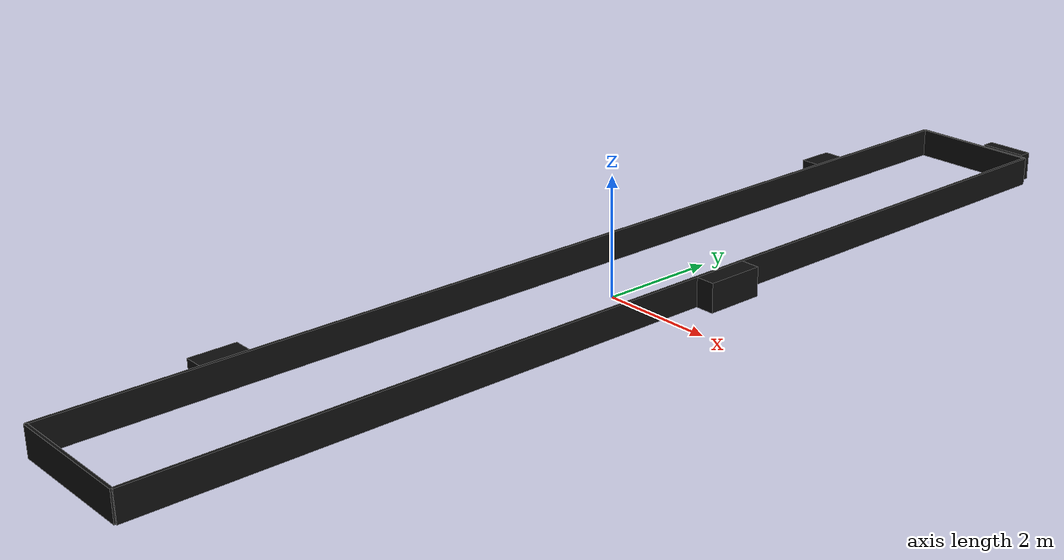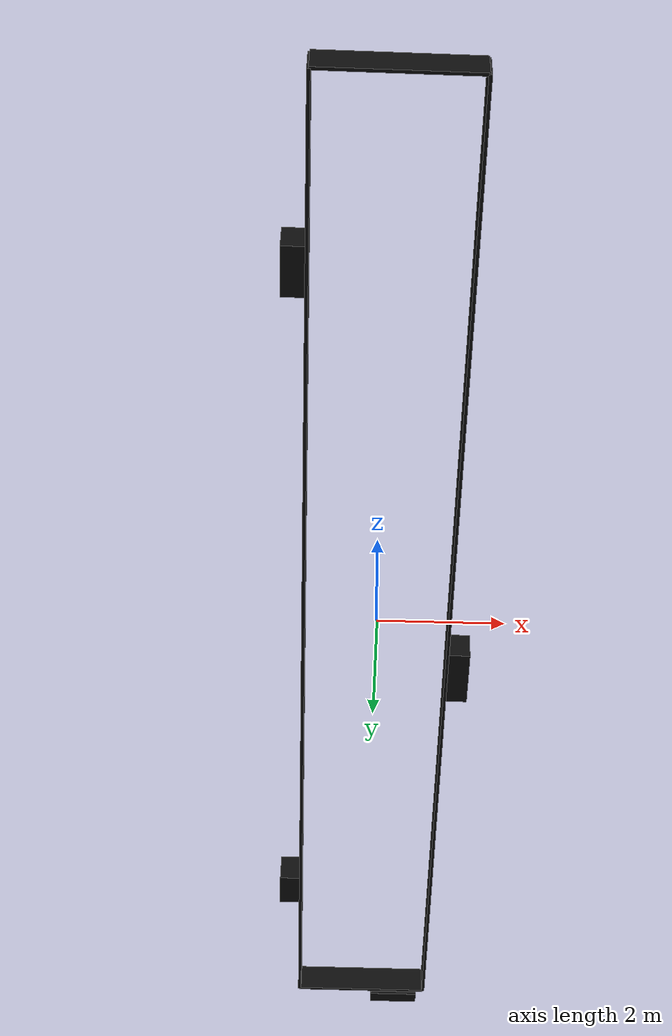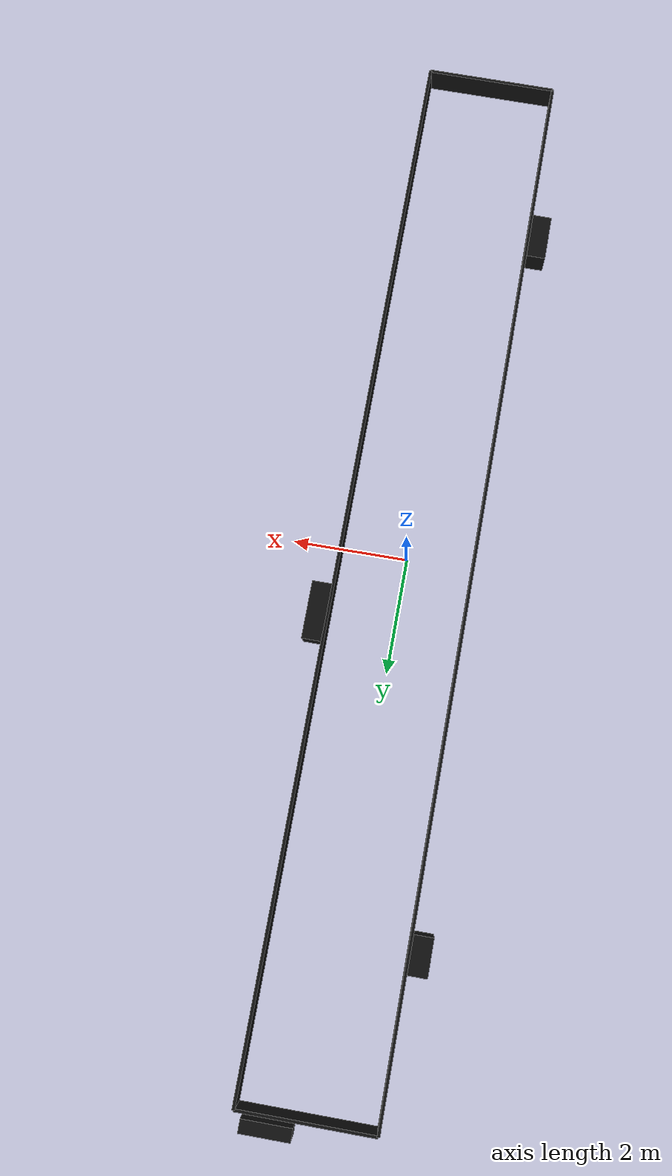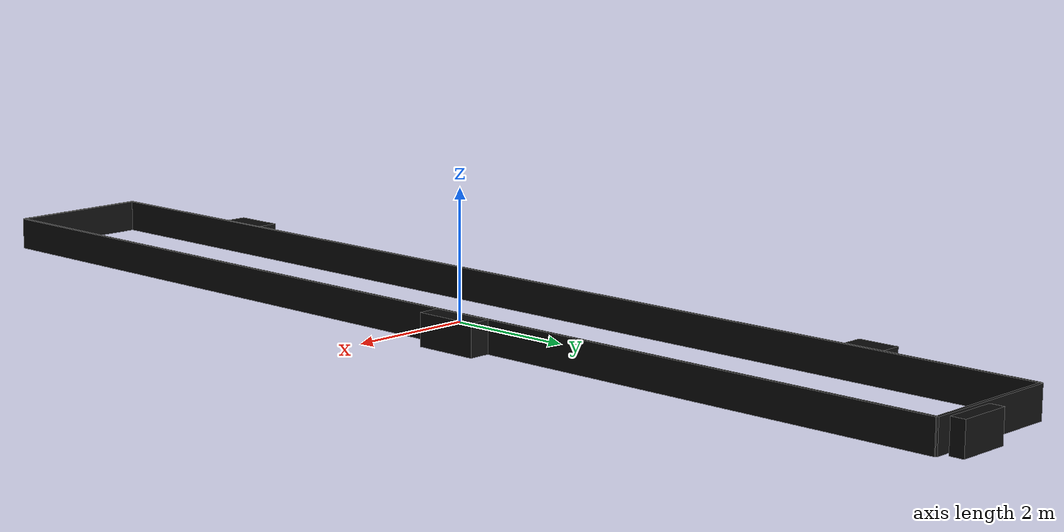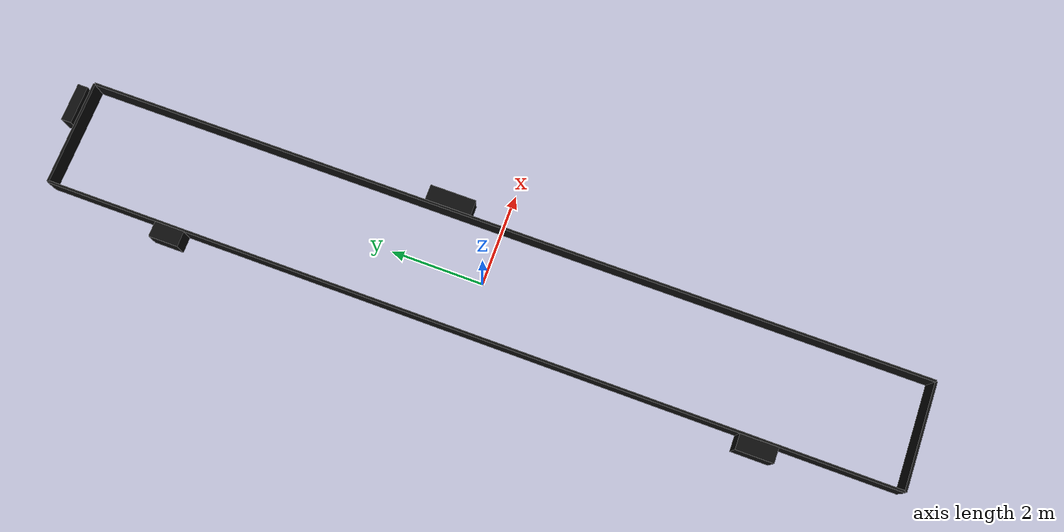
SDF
<?xml version="1.0"?>
<sdf version="1.6">
  <model name="warehouse_lidar_blocker_long">
    <static>true</static>
    <link name="link">
      <!-- Use shelf-outline rails plus a few exterior signatures so long racks
           stop looking like featureless bars, without placing fake obstacles
           out in the open floor. -->
      <collision name="x_min_lidar_rail_collision">
        <pose>-1.15 0 0.25 0 0 0</pose>
        <geometry>
          <box>
            <size>0.05 18.30 0.50</size>
          </box>
        </geometry>
      </collision>
      <collision name="x_max_lidar_rail_collision">
        <pose>1.15 0 0.25 0 0 0</pose>
        <geometry>
          <box>
            <size>0.05 18.30 0.50</size>
          </box>
        </geometry>
      </collision>
      <collision name="y_min_lidar_rail_collision">
        <pose>0 -9.15 0.25 0 0 0</pose>
        <geometry>
          <box>
            <size>2.30 0.05 0.50</size>
          </box>
        </geometry>
      </collision>
      <collision name="y_max_lidar_rail_collision">
        <pose>0 9.15 0.25 0 0 0</pose>
        <geometry>
          <box>
            <size>2.30 0.05 0.50</size>
          </box>
        </geometry>
      </collision>
      <collision name="west_marker_low_collision">
        <pose>-1.34 -6.20 0.25 0 0 0</pose>
        <geometry>
          <box>
            <size>0.34 0.80 0.50</size>
          </box>
        </geometry>
      </collision>
      <collision name="east_marker_mid_collision">
        <pose>1.34 1.20 0.25 0 0 0</pose>
        <geometry>
          <box>
            <size>0.34 1.00 0.50</size>
          </box>
        </geometry>
      </collision>
      <collision name="west_marker_high_collision">
        <pose>-1.34 6.40 0.25 0 0 0</pose>
        <geometry>
          <box>
            <size>0.34 0.64 0.50</size>
          </box>
        </geometry>
      </collision>
      <collision name="north_marker_collision">
        <pose>0.60 9.36 0.25 0 0 0</pose>
        <geometry>
          <box>
            <size>0.84 0.22 0.50</size>
          </box>
        </geometry>
      </collision>
      <visual name="x_min_lidar_rail">
        <pose>-1.15 0 0.25 0 0 0</pose>
        <cast_shadows>false</cast_shadows>
        <geometry>
          <box>
            <size>0.05 18.30 0.50</size>
          </box>
        </geometry>
        <material>
          <ambient>0.03 0.03 0.03 1</ambient>
          <diffuse>0.05 0.05 0.05 1</diffuse>
        </material>
      </visual>
      <visual name="x_max_lidar_rail">
        <pose>1.15 0 0.25 0 0 0</pose>
        <cast_shadows>false</cast_shadows>
        <geometry>
          <box>
            <size>0.05 18.30 0.50</size>
          </box>
        </geometry>
        <material>
          <ambient>0.03 0.03 0.03 1</ambient>
          <diffuse>0.05 0.05 0.05 1</diffuse>
        </material>
      </visual>
      <visual name="y_min_lidar_rail">
        <pose>0 -9.15 0.25 0 0 0</pose>
        <cast_shadows>false</cast_shadows>
        <geometry>
          <box>
            <size>2.30 0.05 0.50</size>
          </box>
        </geometry>
        <material>
          <ambient>0.03 0.03 0.03 1</ambient>
          <diffuse>0.05 0.05 0.05 1</diffuse>
        </material>
      </visual>
      <visual name="y_max_lidar_rail">
        <pose>0 9.15 0.25 0 0 0</pose>
        <cast_shadows>false</cast_shadows>
        <geometry>
          <box>
            <size>2.30 0.05 0.50</size>
          </box>
        </geometry>
        <material>
          <ambient>0.03 0.03 0.03 1</ambient>
          <diffuse>0.05 0.05 0.05 1</diffuse>
        </material>
      </visual>
      <visual name="west_marker_low">
        <pose>-1.34 -6.20 0.25 0 0 0</pose>
        <cast_shadows>false</cast_shadows>
        <geometry>
          <box>
            <size>0.34 0.80 0.50</size>
          </box>
        </geometry>
        <material>
          <ambient>0.03 0.03 0.03 1</ambient>
          <diffuse>0.05 0.05 0.05 1</diffuse>
        </material>
      </visual>
      <visual name="east_marker_mid">
        <pose>1.34 1.20 0.25 0 0 0</pose>
        <cast_shadows>false</cast_shadows>
        <geometry>
          <box>
            <size>0.34 1.00 0.50</size>
          </box>
        </geometry>
        <material>
          <ambient>0.03 0.03 0.03 1</ambient>
          <diffuse>0.05 0.05 0.05 1</diffuse>
        </material>
      </visual>
      <visual name="west_marker_high">
        <pose>-1.34 6.40 0.25 0 0 0</pose>
        <cast_shadows>false</cast_shadows>
        <geometry>
          <box>
            <size>0.34 0.64 0.50</size>
          </box>
        </geometry>
        <material>
          <ambient>0.03 0.03 0.03 1</ambient>
          <diffuse>0.05 0.05 0.05 1</diffuse>
        </material>
      </visual>
      <visual name="north_marker">
        <pose>0.60 9.36 0.25 0 0 0</pose>
        <cast_shadows>false</cast_shadows>
        <geometry>
          <box>
            <size>0.84 0.22 0.50</size>
          </box>
        </geometry>
        <material>
          <ambient>0.03 0.03 0.03 1</ambient>
          <diffuse>0.05 0.05 0.05 1</diffuse>
        </material>
      </visual>
    </link>
  </model>
</sdf>
